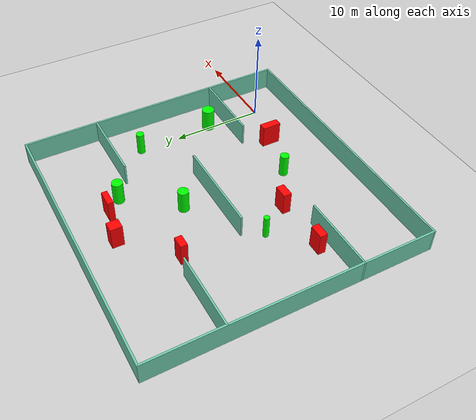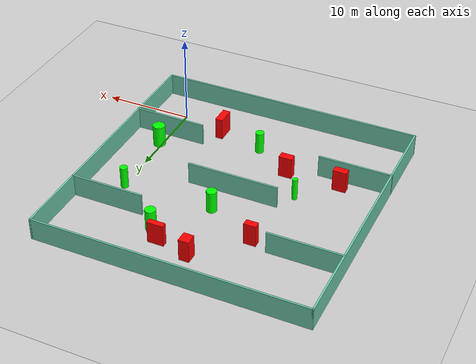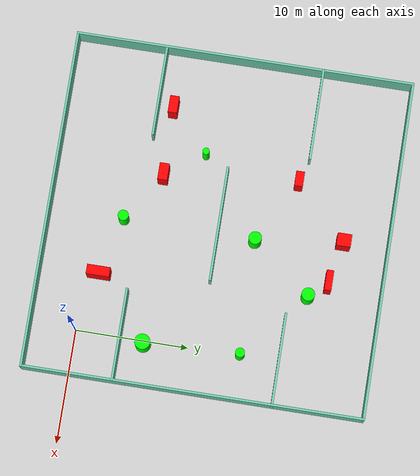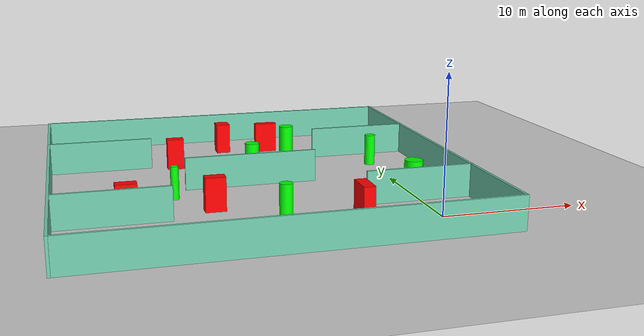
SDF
<sdf version="1.7">
 <world name="default">
  <light name="sun" type="directional">
   <pose>0 0 10 0 -0 0</pose>
   <diffuse>0.8 0.8 0.8 1</diffuse>
   <specular>0.2 0.2 0.2 1</specular>
   <attenuation>
    <range>1000</range>
    <constant>0.9</constant>
    <linear>0.01</linear>
    <quadratic>0.001</quadratic>
   </attenuation>
   <direction>-0.5 0.1 -0.9</direction>
   <spot><inner_angle>0</inner_angle><outer_angle>0</outer_angle><falloff>0</falloff></spot>
  </light>
  <model name="ground_plane">
   <static>1</static>
   <link name="link">
    <collision name="collision">
     <geometry><plane><normal>0 0 1</normal><size>100 100</size></plane></geometry>
     <surface>
      <contact><collide_bitmask>65535</collide_bitmask></contact>
      <friction><ode><mu>100</mu><mu2>50</mu2></ode></friction>
     </surface>
    </collision>
    <visual name="visual">
     <cast_shadows>0</cast_shadows>
     <geometry><plane><normal>0 0 1</normal><size>100 100</size></plane></geometry>
     <material>
      <script><uri>file://media/materials/scripts/gazebo.material</uri><name>Gazebo/Grey</name></script>
     </material>
    </visual>
   </link>
  </model>
  <gravity>0 0 -9.8</gravity>
  <magnetic_field>6e-06 2.3e-05 -4.2e-05</magnetic_field>
  <atmosphere type="adiabatic"/>
  <physics type="ode">
   <max_step_size>0.001</max_step_size>
   <real_time_factor>1</real_time_factor>
   <real_time_update_rate>1000</real_time_update_rate>
  </physics>
  <scene><ambient>0.4 0.4 0.4 1</ambient><background>0.7 0.7 0.7 1</background><shadows>1</shadows></scene>
  <spherical_coordinates>
   <surface_model>EARTH_WGS84</surface_model>
   <latitude_deg>0</latitude_deg>
   <longitude_deg>0</longitude_deg>
   <elevation>0</elevation>
   <heading_deg>0</heading_deg>
  </spherical_coordinates>
  <model name="my_base_walls">
   <link name="Wall_10">
    <collision name="Wall_10_Collision">
     <geometry><box><size>8.2 0.2 2.5</size></box></geometry>
     <pose>0 0 1.25 0 -0 0</pose>
    </collision>
    <visual name="Wall_10_Visual">
     <pose>0 0 1.25 0 -0 0</pose>
     <geometry><box><size>8.2 0.2 2.5</size></box></geometry>
     <material>
      <script><uri>file://media/materials/scripts/gazebo.material</uri><name>Gazebo/Grey</name></script>
      <ambient>0.435294 0.796078 0.67451 1</ambient>
     </material>
     <meta><layer>0</layer></meta>
    </visual>
    <pose>-11 -7 0 0 -0 0</pose>
   </link>
   <link name="Wall_12">
    <collision name="Wall_12_Collision">
     <geometry><box><size>8.2 0.2 2.5</size></box></geometry>
     <pose>0 0 1.25 0 -0 0</pose>
    </collision>
    <visual name="Wall_12_Visual">
     <pose>0 0 1.25 0 -0 0</pose>
     <geometry><box><size>8.2 0.2 2.5</size></box></geometry>
     <material>
      <script><uri>file://media/materials/scripts/gazebo.material</uri><name>Gazebo/Grey</name></script>
      <ambient>0.435294 0.796078 0.67451 1</ambient>
     </material>
     <meta><layer>0</layer></meta>
    </visual>
    <pose>-11 7 0 0 -0 0</pose>
   </link>
   <link name="Wall_14">
    <collision name="Wall_14_Collision">
     <geometry><box><size>8.2 0.2 2.5</size></box></geometry>
     <pose>0 0 1.25 0 -0 0</pose>
    </collision>
    <visual name="Wall_14_Visual">
     <pose>0 0 1.25 0 -0 0</pose>
     <geometry><box><size>8.2 0.2 2.5</size></box></geometry>
     <material>
      <script><uri>file://media/materials/scripts/gazebo.material</uri><name>Gazebo/Grey</name></script>
      <ambient>0.435294 0.796078 0.67451 1</ambient>
     </material>
     <meta><layer>0</layer></meta>
    </visual>
    <pose>11 7 0 0 -0 3.14159</pose>
   </link>
   <link name="Wall_16">
    <collision name="Wall_16_Collision">
     <geometry><box><size>10.2 0.2 2.5</size></box></geometry>
     <pose>0 0 1.25 0 -0 0</pose>
    </collision>
    <visual name="Wall_16_Visual">
     <pose>0 0 1.25 0 -0 0</pose>
     <geometry><box><size>10.2 0.2 2.5</size></box></geometry>
     <material>
      <script><uri>file://media/materials/scripts/gazebo.material</uri><name>Gazebo/Grey</name></script>
      <ambient>0.435294 0.796078 0.67451 1</ambient>
     </material>
     <meta><layer>0</layer></meta>
    </visual>
    <pose>0 0 0 0 -0 3.14159</pose>
   </link>
   <link name="Wall_2">
    <collision name="Wall_2_Collision">
     <geometry><box><size>30.2 0.2 2.5</size></box></geometry>
     <pose>0 0 1.25 0 -0 0</pose>
    </collision>
    <visual name="Wall_2_Visual">
     <pose>0 0 1.25 0 -0 0</pose>
     <geometry><box><size>30.2 0.2 2.5</size></box></geometry>
     <material>
      <script><uri>file://media/materials/scripts/gazebo.material</uri><name>Gazebo/Grey</name></script>
      <ambient>0.435294 0.796078 0.67451 1</ambient>
     </material>
     <meta><layer>0</layer></meta>
    </visual>
    <pose>0 -15 0 0 -0 3.14159</pose>
   </link>
   <link name="Wall_3">
    <collision name="Wall_3_Collision">
     <geometry><box><size>30.2 0.2 2.5</size></box></geometry>
     <pose>0 0 1.25 0 -0 0</pose>
    </collision>
    <visual name="Wall_3_Visual">
     <pose>0 0 1.25 0 -0 0</pose>
     <geometry><box><size>30.2 0.2 2.5</size></box></geometry>
     <material>
      <script><uri>file://media/materials/scripts/gazebo.material</uri><name>Gazebo/Grey</name></script>
      <ambient>0.435294 0.796078 0.67451 1</ambient>
     </material>
     <meta><layer>0</layer></meta>
    </visual>
    <pose>-15 0 0 0 -0 1.5708</pose>
   </link>
   <link name="Wall_4">
    <collision name="Wall_4_Collision">
     <geometry><box><size>30.2 0.2 2.5</size></box></geometry>
     <pose>0 0 1.25 0 -0 0</pose>
    </collision>
    <visual name="Wall_4_Visual">
     <pose>0 0 1.25 0 -0 0</pose>
     <geometry><box><size>30.2 0.2 2.5</size></box></geometry>
     <material>
      <script><uri>file://media/materials/scripts/gazebo.material</uri><name>Gazebo/Grey</name></script>
      <ambient>0.435294 0.796078 0.67451 1</ambient>
     </material>
     <meta><layer>0</layer></meta>
    </visual>
    <pose>0 15 0 0 -0 0</pose>
   </link>
   <link name="Wall_6">
    <collision name="Wall_6_Collision">
     <geometry><box><size>30.2 0.2 2.5</size></box></geometry>
     <pose>0 0 1.25 0 -0 0</pose>
    </collision>
    <visual name="Wall_6_Visual">
     <pose>0 0 1.25 0 -0 0</pose>
     <geometry><box><size>30.2 0.2 2.5</size></box></geometry>
     <material>
      <script><uri>file://media/materials/scripts/gazebo.material</uri><name>Gazebo/Grey</name></script>
      <ambient>0.435294 0.796078 0.67451 1</ambient>
     </material>
     <meta><layer>0</layer></meta>
    </visual>
    <pose>15 0 0 0 -0 1.5708</pose>
   </link>
   <link name="Wall_8">
    <collision name="Wall_8_Collision">
     <geometry><box><size>8.2 0.2 2.5</size></box></geometry>
     <pose>0 0 1.25 0 -0 0</pose>
    </collision>
    <visual name="Wall_8_Visual">
     <pose>0 0 1.25 0 -0 0</pose>
     <geometry><box><size>8.2 0.2 2.5</size></box></geometry>
     <material>
      <script><uri>file://media/materials/scripts/gazebo.material</uri><name>Gazebo/Grey</name></script>
      <ambient>0.435294 0.796078 0.67451 1</ambient>
     </material>
     <meta><layer>0</layer></meta>
    </visual>
    <pose>11 -7 0 0 -0 3.14159</pose>
   </link>
   <static>1</static>
   <pose>-11 11 0 0 -0 0</pose>
  </model>
  <model name="cylinder1">
   <static>1</static>
   <link name="link">
    <inertial>
     <mass>1</mass>
     <inertia><ixx>0.5</ixx><ixy>0</ixy><ixz>0</ixz><iyy>0.5</iyy><iyz>0</iyz><izz>1</izz></inertia>
    </inertial>
    <collision name="collision">
     <geometry><cylinder><radius>0.5877376075136911</radius><length>2.5</length></cylinder></geometry>
    </collision>
    <visual name="visual">
     <geometry><cylinder><radius>0.5877376075136911</radius><length>2.5</length></cylinder></geometry>
     <material>
      <ambient>0 1 0 1</ambient>
      <diffuse>0 1 0 1</diffuse>
      <specular>0.1 0.1 0.1 1</specular>
      <emissive>0 0 0 0</emissive>
     </material>
    </visual>
   </link>
   <pose>-6.008856181274647 19.65554007110458 1.25 0 0 0</pose>
  </model>
  <model name="cylinder2">
   <static>1</static>
   <link name="link">
    <inertial>
     <mass>1</mass>
     <inertia><ixx>0.5</ixx><ixy>0</ixy><ixz>0</ixz><iyy>0.5</iyy><iyz>0</iyz><izz>1</izz></inertia>
    </inertial>
    <collision name="collision">
     <geometry><cylinder><radius>0.4740109014823821</radius><length>2.5</length></cylinder></geometry>
    </collision>
    <visual name="visual">
     <geometry><cylinder><radius>0.4740109014823821</radius><length>2.5</length></cylinder></geometry>
     <material>
      <ambient>0 1 0 1</ambient>
      <diffuse>0 1 0 1</diffuse>
      <specular>0.1 0.1 0.1 1</specular>
      <emissive>0 0 0 0</emissive>
     </material>
    </visual>
   </link>
   <pose>-10.39250505880941 2.617243387806167 1.25 0 0 0</pose>
  </model>
  <model name="cylinder3">
   <static>1</static>
   <link name="link">
    <inertial>
     <mass>1</mass>
     <inertia><ixx>0.5</ixx><ixy>0</ixy><ixz>0</ixz><iyy>0.5</iyy><iyz>0</iyz><izz>1</izz></inertia>
    </inertial>
    <collision name="collision">
     <geometry><cylinder><radius>0.6881682932155478</radius><length>2.5</length></cylinder></geometry>
    </collision>
    <visual name="visual">
     <geometry><cylinder><radius>0.6881682932155478</radius><length>2.5</length></cylinder></geometry>
     <material>
      <ambient>0 1 0 1</ambient>
      <diffuse>0 1 0 1</diffuse>
      <specular>0.1 0.1 0.1 1</specular>
      <emissive>0 0 0 0</emissive>
     </material>
    </visual>
   </link>
   <pose>0.320618587914165 6.065304467074974 1.25 0 0 0</pose>
  </model>
  <model name="cylinder4">
   <static>1</static>
   <link name="link">
    <inertial>
     <mass>1</mass>
     <inertia><ixx>0.5</ixx><ixy>0</ixy><ixz>0</ixz><iyy>0.5</iyy><iyz>0</iyz><izz>1</izz></inertia>
    </inertial>
    <collision name="collision">
     <geometry><cylinder><radius>0.42209491769676</radius><length>2.5</length></cylinder></geometry>
    </collision>
    <visual name="visual">
     <geometry><cylinder><radius>0.42209491769676</radius><length>2.5</length></cylinder></geometry>
     <material>
      <ambient>0 1 0 1</ambient>
      <diffuse>0 1 0 1</diffuse>
      <specular>0.1 0.1 0.1 1</specular>
      <emissive>0 0 0 0</emissive>
     </material>
    </visual>
   </link>
   <pose>-0.053732036392514004 14.57835665167897 1.25 0 0 0</pose>
  </model>
  <model name="cylinder5">
   <static>1</static>
   <link name="link">
    <inertial>
     <mass>1</mass>
     <inertia><ixx>0.5</ixx><ixy>0</ixy><ixz>0</ixz><iyy>0.5</iyy><iyz>0</iyz><izz>1</izz></inertia>
    </inertial>
    <collision name="collision">
     <geometry><cylinder><radius>0.5720991543661011</radius><length>2.5</length></cylinder></geometry>
    </collision>
    <visual name="visual">
     <geometry><cylinder><radius>0.5720991543661011</radius><length>2.5</length></cylinder></geometry>
     <material>
      <ambient>0 1 0 1</ambient>
      <diffuse>0 1 0 1</diffuse>
      <specular>0.1 0.1 0.1 1</specular>
      <emissive>0 0 0 0</emissive>
     </material>
    </visual>
   </link>
   <pose>-10.20458985179626 14.330188541397845 1.25 0 0 0</pose>
  </model>
  <model name="cylinder6">
   <static>1</static>
   <link name="link">
    <inertial>
     <mass>1</mass>
     <inertia><ixx>0.5</ixx><ixy>0</ixy><ixz>0</ixz><iyy>0.5</iyy><iyz>0</iyz><izz>1</izz></inertia>
    </inertial>
    <collision name="collision">
     <geometry><cylinder><radius>0.3046645251500397</radius><length>2.5</length></cylinder></geometry>
    </collision>
    <visual name="visual">
     <geometry><cylinder><radius>0.3046645251500397</radius><length>2.5</length></cylinder></geometry>
     <material>
      <ambient>0 1 0 1</ambient>
      <diffuse>0 1 0 1</diffuse>
      <specular>0.1 0.1 0.1 1</specular>
      <emissive>0 0 0 0</emissive>
     </material>
    </visual>
   </link>
   <pose>-17.16653703288597 8.874713755959926 1.25 0 0 0</pose>
  </model>
  <model name="box1">
   <static>1</static>
   <link name="link">
    <inertial>
     <mass>1</mass>
     <inertia><ixx>0.083</ixx><ixy>0</ixy><ixz>0</ixz><iyy>0.083</iyy><iyz>0</iyz><izz>0.083</izz></inertia>
    </inertial>
    <collision name="collision">
     <geometry><box><size>1.3243629318542647 0.750976918283746 2.5</size></box></geometry>
    </collision>
    <visual name="visual">
     <geometry><box><size>1.3243629318542647 0.750976918283746 2.5</size></box></geometry>
     <material>
      <ambient>1 0 0 1</ambient>
      <diffuse>1 0 0 1</diffuse>
      <specular>0.1 0.1 0.1 1</specular>
      <emissive>0 0 0 0</emissive>
     </material>
    </visual>
    <sensor name="my_contact" type="contact">
     <contact><collision>box_collision</collision><topic>__default_topic__</topic></contact>
    </sensor>
   </link>
   <pose>-16.017350527186494 17.375006009361044 1.25 0 0 0</pose>
  </model>
  <model name="box2">
   <static>1</static>
   <link name="link">
    <inertial>
     <mass>1</mass>
     <inertia><ixx>0.083</ixx><ixy>0</ixy><ixz>0</ixz><iyy>0.083</iyy><iyz>0</iyz><izz>0.083</izz></inertia>
    </inertial>
    <collision name="collision">
     <geometry><box><size>1.5150676946065553 0.8069242244897352 2.5</size></box></geometry>
    </collision>
    <visual name="visual">
     <geometry><box><size>1.5150676946065553 0.8069242244897352 2.5</size></box></geometry>
     <material>
      <ambient>1 0 0 1</ambient>
      <diffuse>1 0 0 1</diffuse>
      <specular>0.1 0.1 0.1 1</specular>
      <emissive>0 0 0 0</emissive>
     </material>
    </visual>
    <sensor name="my_contact" type="contact">
     <contact><collision>box_collision</collision><topic>__default_topic__</topic></contact>
    </sensor>
   </link>
   <pose>-20.90412171301881 5.386951754831124 1.25 0 0 0</pose>
  </model>
  <model name="box3">
   <static>1</static>
   <link name="link">
    <inertial>
     <mass>1</mass>
     <inertia><ixx>0.083</ixx><ixy>0</ixy><ixz>0</ixz><iyy>0.083</iyy><iyz>0</iyz><izz>0.083</izz></inertia>
    </inertial>
    <collision name="collision">
     <geometry><box><size>1.7901379374734558 0.6211912224708894 2.5</size></box></geometry>
    </collision>
    <visual name="visual">
     <geometry><box><size>1.7901379374734558 0.6211912224708894 2.5</size></box></geometry>
     <material>
      <ambient>1 0 0 1</ambient>
      <diffuse>1 0 0 1</diffuse>
      <specular>0.1 0.1 0.1 1</specular>
      <emissive>0 0 0 0</emissive>
     </material>
    </visual>
    <sensor name="my_contact" type="contact">
     <contact><collision>box_collision</collision><topic>__default_topic__</topic></contact>
    </sensor>
   </link>
   <pose>-7.522204404249692 21.268745163713422 1.25 0 0 0</pose>
  </model>
  <model name="box4">
   <static>1</static>
   <link name="link">
    <inertial>
     <mass>1</mass>
     <inertia><ixx>0.083</ixx><ixy>0</ixy><ixz>0</ixz><iyy>0.083</iyy><iyz>0</iyz><izz>0.083</izz></inertia>
    </inertial>
    <collision name="collision">
     <geometry><box><size>1.1265302452068497 1.254862065749262 2.5</size></box></geometry>
    </collision>
    <visual name="visual">
     <geometry><box><size>1.1265302452068497 1.254862065749262 2.5</size></box></geometry>
     <material>
      <ambient>1 0 0 1</ambient>
      <diffuse>1 0 0 1</diffuse>
      <specular>0.1 0.1 0.1 1</specular>
      <emissive>0 0 0 0</emissive>
     </material>
    </visual>
    <sensor name="my_contact" type="contact">
     <contact><collision>box_collision</collision><topic>__default_topic__</topic></contact>
    </sensor>
   </link>
   <pose>-11.245408842880284 22.045525878388403 1.25 0 0 0</pose>
  </model>
  <model name="box5">
   <static>1</static>
   <link name="link">
    <inertial>
     <mass>1</mass>
     <inertia><ixx>0.083</ixx><ixy>0</ixy><ixz>0</ixz><iyy>0.083</iyy><iyz>0</iyz><izz>0.083</izz></inertia>
    </inertial>
    <collision name="collision">
     <geometry><box><size>1.489069424917096 0.8631840434393208 2.5</size></box></geometry>
    </collision>
    <visual name="visual">
     <geometry><box><size>1.489069424917096 0.8631840434393208 2.5</size></box></geometry>
     <material>
      <ambient>1 0 0 1</ambient>
      <diffuse>1 0 0 1</diffuse>
      <specular>0.1 0.1 0.1 1</specular>
      <emissive>0 0 0 0</emissive>
     </material>
    </visual>
    <sensor name="my_contact" type="contact">
     <contact><collision>box_collision</collision><topic>__default_topic__</topic></contact>
    </sensor>
   </link>
   <pose>-14.80032563408095 5.472611154880321 1.25 0 0 0</pose>
  </model>
  <model name="box6">
   <static>1</static>
   <link name="link">
    <inertial>
     <mass>1</mass>
     <inertia><ixx>0.083</ixx><ixy>0</ixy><ixz>0</ixz><iyy>0.083</iyy><iyz>0</iyz><izz>0.083</izz></inertia>
    </inertial>
    <collision name="collision">
     <geometry><box><size>0.8479305876985925 2.0440401175727922 2.5</size></box></geometry>
    </collision>
    <visual name="visual">
     <geometry><box><size>0.8479305876985925 2.0440401175727922 2.5</size></box></geometry>
     <material>
      <ambient>1 0 0 1</ambient>
      <diffuse>1 0 0 1</diffuse>
      <specular>0.1 0.1 0.1 1</specular>
      <emissive>0 0 0 0</emissive>
     </material>
    </visual>
    <sensor name="my_contact" type="contact">
     <contact><collision>box_collision</collision><topic>__default_topic__</topic></contact>
    </sensor>
   </link>
   <pose>-5.229203612006954 1.2526300886225616 1.25 0 0 0</pose>
  </model>
 </world>
</sdf>
